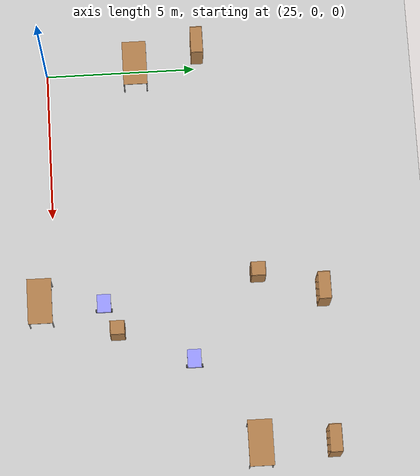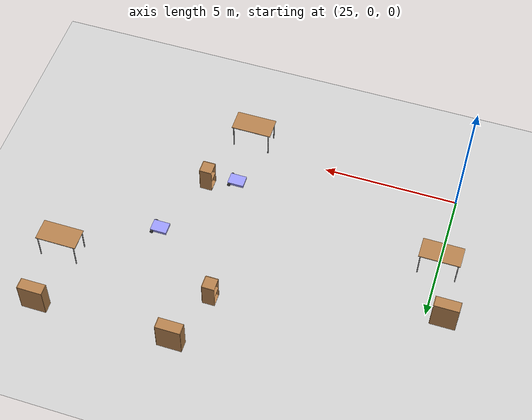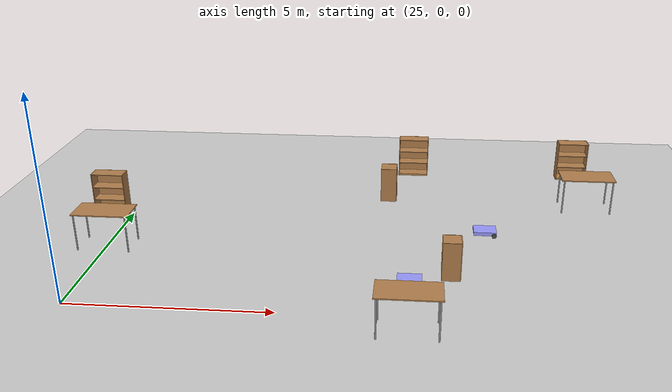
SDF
<sdf version="1.4">
 <world name="default">
  <light name="sun" type="directional">
   <pose>0 0 10 0 -0 0</pose>
   <diffuse>0.8 0.8 0.8 1</diffuse>
   <specular>0.2 0.2 0.2 1</specular>
   <attenuation>
    <range>1000</range>
    <constant>0.9</constant>
    <linear>0.01</linear>
    <quadratic>0.001</quadratic>
   </attenuation>
   <direction>0.5 0.1 -0.9</direction>
  </light>
  <model name="ground_plane">
   <static>1</static>
   <link name="link">
    <collision name="collision">
     <geometry><plane><normal>0 0 1</normal><size>100 100</size></plane></geometry>
     <surface><friction><ode><mu>100</mu><mu2>50</mu2></ode></friction></surface>
    </collision>
    <visual name="visual">
     <cast_shadows>0</cast_shadows>
     <geometry><plane><normal>0 0 1</normal><size>100 100</size></plane></geometry>
     <material>
      <script><uri>file://media/materials/scripts/gazebo.material</uri><name>Gazebo/Grey</name></script>
     </material>
    </visual>
    <velocity_decay><linear>0</linear><angular>0</angular></velocity_decay>
   </link>
  </model>
  <physics type="ode">
   <max_step_size>0.001</max_step_size>
   <real_time_factor>1</real_time_factor>
   <real_time_update_rate>1000</real_time_update_rate>
   <gravity>0 0 -9.8</gravity>
  </physics>
  <scene><ambient>0.4 0.4 0.4 1</ambient><background>0.7 0.7 0.7 1</background><shadows>1</shadows></scene>
  <model name="bookshelf">
   <static>1</static>
   <link name="link">
    <inertial><mass>1</mass></inertial>
    <collision name="back">
     <pose>0 0.005 0.6 0 -0 0</pose>
     <geometry><box><size>0.9 0.01 1.2</size></box></geometry>
    </collision>
    <visual name="visual1">
     <pose>0 0.005 0.6 0 -0 0</pose>
     <geometry><box><size>0.9 0.01 1.2</size></box></geometry>
     <material>
      <script><uri>file://media/materials/scripts/gazebo.material</uri><name>Gazebo/Wood</name></script>
     </material>
    </visual>
    <collision name="left_side">
     <pose>0.45 -0.195 0.6 0 -0 0</pose>
     <geometry><box><size>0.02 0.4 1.2</size></box></geometry>
    </collision>
    <visual name="visual2">
     <pose>0.45 -0.195 0.6 0 -0 0</pose>
     <geometry><box><size>0.02 0.4 1.2</size></box></geometry>
     <material>
      <script><uri>file://media/materials/scripts/gazebo.material</uri><name>Gazebo/Wood</name></script>
     </material>
    </visual>
    <collision name="right_side">
     <pose>-0.45 -0.195 0.6 0 -0 0</pose>
     <geometry><box><size>0.02 0.4 1.2</size></box></geometry>
    </collision>
    <visual name="visual3">
     <pose>-0.45 -0.195 0.6 0 -0 0</pose>
     <geometry><box><size>0.02 0.4 1.2</size></box></geometry>
     <material>
      <script><uri>file://media/materials/scripts/gazebo.material</uri><name>Gazebo/Wood</name></script>
     </material>
    </visual>
    <collision name="bottom">
     <pose>0 -0.195 0.03 0 -0 0</pose>
     <geometry><box><size>0.88 0.4 0.06</size></box></geometry>
    </collision>
    <visual name="visual4">
     <pose>0 -0.195 0.03 0 -0 0</pose>
     <geometry><box><size>0.88 0.4 0.06</size></box></geometry>
     <material>
      <script><uri>file://media/materials/scripts/gazebo.material</uri><name>Gazebo/Wood</name></script>
     </material>
    </visual>
    <collision name="top">
     <pose>0 -0.195 1.19 0 -0 0</pose>
     <geometry><box><size>0.88 0.4 0.02</size></box></geometry>
    </collision>
    <visual name="visual5">
     <pose>0 -0.195 1.19 0 -0 0</pose>
     <geometry><box><size>0.88 0.4 0.02</size></box></geometry>
     <material>
      <script><uri>file://media/materials/scripts/gazebo.material</uri><name>Gazebo/Wood</name></script>
     </material>
    </visual>
    <collision name="low_shelf">
     <pose>0 -0.195 0.43 0 -0 0</pose>
     <geometry><box><size>0.88 0.4 0.02</size></box></geometry>
    </collision>
    <visual name="visual6">
     <pose>0 -0.195 0.43 0 -0 0</pose>
     <geometry><box><size>0.88 0.4 0.02</size></box></geometry>
     <material>
      <script><uri>file://media/materials/scripts/gazebo.material</uri><name>Gazebo/Wood</name></script>
     </material>
    </visual>
    <collision name="high_shelf">
     <pose>0 -0.195 0.8 0 -0 0</pose>
     <geometry><box><size>0.88 0.4 0.02</size></box></geometry>
    </collision>
    <visual name="visual7">
     <pose>0 -0.195 0.8 0 -0 0</pose>
     <geometry><box><size>0.88 0.4 0.02</size></box></geometry>
     <material>
      <script><uri>file://media/materials/scripts/gazebo.material</uri><name>Gazebo/Wood</name></script>
     </material>
    </visual>
    <velocity_decay><linear>0</linear><angular>0</angular></velocity_decay>
   </link>
   <pose>33 9 0 0 -0 0</pose>
  </model>
  <model name="bookshelf_0">
   <static>1</static>
   <link name="link">
    <inertial><mass>1</mass></inertial>
    <collision name="back">
     <pose>0 0.005 0.6 0 -0 0</pose>
     <geometry><box><size>0.9 0.01 1.2</size></box></geometry>
    </collision>
    <visual name="visual1">
     <pose>0 0.005 0.6 0 -0 0</pose>
     <geometry><box><size>0.9 0.01 1.2</size></box></geometry>
     <material>
      <script><uri>file://media/materials/scripts/gazebo.material</uri><name>Gazebo/Wood</name></script>
     </material>
    </visual>
    <collision name="left_side">
     <pose>0.45 -0.195 0.6 0 -0 0</pose>
     <geometry><box><size>0.02 0.4 1.2</size></box></geometry>
    </collision>
    <visual name="visual2">
     <pose>0.45 -0.195 0.6 0 -0 0</pose>
     <geometry><box><size>0.02 0.4 1.2</size></box></geometry>
     <material>
      <script><uri>file://media/materials/scripts/gazebo.material</uri><name>Gazebo/Wood</name></script>
     </material>
    </visual>
    <collision name="right_side">
     <pose>-0.45 -0.195 0.6 0 -0 0</pose>
     <geometry><box><size>0.02 0.4 1.2</size></box></geometry>
    </collision>
    <visual name="visual3">
     <pose>-0.45 -0.195 0.6 0 -0 0</pose>
     <geometry><box><size>0.02 0.4 1.2</size></box></geometry>
     <material>
      <script><uri>file://media/materials/scripts/gazebo.material</uri><name>Gazebo/Wood</name></script>
     </material>
    </visual>
    <collision name="bottom">
     <pose>0 -0.195 0.03 0 -0 0</pose>
     <geometry><box><size>0.88 0.4 0.06</size></box></geometry>
    </collision>
    <visual name="visual4">
     <pose>0 -0.195 0.03 0 -0 0</pose>
     <geometry><box><size>0.88 0.4 0.06</size></box></geometry>
     <material>
      <script><uri>file://media/materials/scripts/gazebo.material</uri><name>Gazebo/Wood</name></script>
     </material>
    </visual>
    <collision name="top">
     <pose>0 -0.195 1.19 0 -0 0</pose>
     <geometry><box><size>0.88 0.4 0.02</size></box></geometry>
    </collision>
    <visual name="visual5">
     <pose>0 -0.195 1.19 0 -0 0</pose>
     <geometry><box><size>0.88 0.4 0.02</size></box></geometry>
     <material>
      <script><uri>file://media/materials/scripts/gazebo.material</uri><name>Gazebo/Wood</name></script>
     </material>
    </visual>
    <collision name="low_shelf">
     <pose>0 -0.195 0.43 0 -0 0</pose>
     <geometry><box><size>0.88 0.4 0.02</size></box></geometry>
    </collision>
    <visual name="visual6">
     <pose>0 -0.195 0.43 0 -0 0</pose>
     <geometry><box><size>0.88 0.4 0.02</size></box></geometry>
     <material>
      <script><uri>file://media/materials/scripts/gazebo.material</uri><name>Gazebo/Wood</name></script>
     </material>
    </visual>
    <collision name="high_shelf">
     <pose>0 -0.195 0.8 0 -0 0</pose>
     <geometry><box><size>0.88 0.4 0.02</size></box></geometry>
    </collision>
    <visual name="visual7">
     <pose>0 -0.195 0.8 0 -0 0</pose>
     <geometry><box><size>0.88 0.4 0.02</size></box></geometry>
     <material>
      <script><uri>file://media/materials/scripts/gazebo.material</uri><name>Gazebo/Wood</name></script>
     </material>
    </visual>
    <velocity_decay><linear>0</linear><angular>0</angular></velocity_decay>
   </link>
   <pose>38 9 0 0 -0 0</pose>
  </model>
  <model name="bookshelf_1">
   <static>1</static>
   <link name="link">
    <inertial><mass>1</mass></inertial>
    <collision name="back">
     <pose>0 0.005 0.6 0 -0 0</pose>
     <geometry><box><size>0.9 0.01 1.2</size></box></geometry>
    </collision>
    <visual name="visual1">
     <pose>0 0.005 0.6 0 -0 0</pose>
     <geometry><box><size>0.9 0.01 1.2</size></box></geometry>
     <material>
      <script><uri>file://media/materials/scripts/gazebo.material</uri><name>Gazebo/Wood</name></script>
     </material>
    </visual>
    <collision name="left_side">
     <pose>0.45 -0.195 0.6 0 -0 0</pose>
     <geometry><box><size>0.02 0.4 1.2</size></box></geometry>
    </collision>
    <visual name="visual2">
     <pose>0.45 -0.195 0.6 0 -0 0</pose>
     <geometry><box><size>0.02 0.4 1.2</size></box></geometry>
     <material>
      <script><uri>file://media/materials/scripts/gazebo.material</uri><name>Gazebo/Wood</name></script>
     </material>
    </visual>
    <collision name="right_side">
     <pose>-0.45 -0.195 0.6 0 -0 0</pose>
     <geometry><box><size>0.02 0.4 1.2</size></box></geometry>
    </collision>
    <visual name="visual3">
     <pose>-0.45 -0.195 0.6 0 -0 0</pose>
     <geometry><box><size>0.02 0.4 1.2</size></box></geometry>
     <material>
      <script><uri>file://media/materials/scripts/gazebo.material</uri><name>Gazebo/Wood</name></script>
     </material>
    </visual>
    <collision name="bottom">
     <pose>0 -0.195 0.03 0 -0 0</pose>
     <geometry><box><size>0.88 0.4 0.06</size></box></geometry>
    </collision>
    <visual name="visual4">
     <pose>0 -0.195 0.03 0 -0 0</pose>
     <geometry><box><size>0.88 0.4 0.06</size></box></geometry>
     <material>
      <script><uri>file://media/materials/scripts/gazebo.material</uri><name>Gazebo/Wood</name></script>
     </material>
    </visual>
    <collision name="top">
     <pose>0 -0.195 1.19 0 -0 0</pose>
     <geometry><box><size>0.88 0.4 0.02</size></box></geometry>
    </collision>
    <visual name="visual5">
     <pose>0 -0.195 1.19 0 -0 0</pose>
     <geometry><box><size>0.88 0.4 0.02</size></box></geometry>
     <material>
      <script><uri>file://media/materials/scripts/gazebo.material</uri><name>Gazebo/Wood</name></script>
     </material>
    </visual>
    <collision name="low_shelf">
     <pose>0 -0.195 0.43 0 -0 0</pose>
     <geometry><box><size>0.88 0.4 0.02</size></box></geometry>
    </collision>
    <visual name="visual6">
     <pose>0 -0.195 0.43 0 -0 0</pose>
     <geometry><box><size>0.88 0.4 0.02</size></box></geometry>
     <material>
      <script><uri>file://media/materials/scripts/gazebo.material</uri><name>Gazebo/Wood</name></script>
     </material>
    </visual>
    <collision name="high_shelf">
     <pose>0 -0.195 0.8 0 -0 0</pose>
     <geometry><box><size>0.88 0.4 0.02</size></box></geometry>
    </collision>
    <visual name="visual7">
     <pose>0 -0.195 0.8 0 -0 0</pose>
     <geometry><box><size>0.88 0.4 0.02</size></box></geometry>
     <material>
      <script><uri>file://media/materials/scripts/gazebo.material</uri><name>Gazebo/Wood</name></script>
     </material>
    </visual>
    <velocity_decay><linear>0</linear><angular>0</angular></velocity_decay>
   </link>
   <pose>24.3494 5.30723 0 0 -0 0</pose>
  </model>
  <model name="cabinet">
   <static>1</static>
   <link name="cabinet_bottom_plate">
    <inertial>
     <pose>0 0 -1 0 -0 0</pose>
     <inertia><ixx>2.05</ixx><ixy>0</ixy><ixz>0</ixz><iyy>2.05</iyy><iyz>0</iyz><izz>2.05</izz></inertia>
     <mass>25</mass>
    </inertial>
    <collision name="cabinet_bottom_plate_geom">
     <pose>0 0 0.01 0 -0 0</pose>
     <geometry><box><size>0.45 0.45 0.02</size></box></geometry>
    </collision>
    <visual name="cabinet_bottom_plate_geom_visual">
     <pose>0 0 0.01 0 -0 0</pose>
     <geometry><box><size>0.45 0.45 0.02</size></box></geometry>
     <material>
      <script><uri>file://media/materials/scripts/gazebo.material</uri><name>Gazebo/Wood</name></script>
     </material>
    </visual>
    <collision name="cabinet_bottom_plate_geom_cabinet_back_plate">
     <pose>0.235 0 0.51 0 -0 0</pose>
     <geometry><box><size>0.02 0.45 1.02</size></box></geometry>
    </collision>
    <visual name="cabinet_bottom_plate_geom_cabinet_back_plate_visual">
     <pose>0.235 0 0.51 0 -0 0</pose>
     <geometry><box><size>0.02 0.45 1.02</size></box></geometry>
     <material>
      <script><uri>file://media/materials/scripts/gazebo.material</uri><name>Gazebo/Wood</name></script>
     </material>
    </visual>
    <collision name="cabinet_bottom_plate_geom_cabinet_left_plate">
     <pose>0 0.235 0.51 0 -0 0</pose>
     <geometry><box><size>0.45 0.02 1.02</size></box></geometry>
    </collision>
    <visual name="cabinet_bottom_plate_geom_cabinet_left_plate_visual">
     <pose>0 0.235 0.51 0 -0 0</pose>
     <geometry><box><size>0.45 0.02 1.02</size></box></geometry>
     <material>
      <script><uri>file://media/materials/scripts/gazebo.material</uri><name>Gazebo/Wood</name></script>
     </material>
    </visual>
    <collision name="cabinet_bottom_plate_geom_cabinet_middle_plate">
     <pose>0 0 0.51 0 -0 0</pose>
     <geometry><box><size>0.45 0.45 0.02</size></box></geometry>
    </collision>
    <visual name="cabinet_bottom_plate_geom_cabinet_middle_plate_visual">
     <pose>0 0 0.51 0 -0 0</pose>
     <geometry><box><size>0.45 0.45 0.02</size></box></geometry>
     <material>
      <script><uri>file://media/materials/scripts/gazebo.material</uri><name>Gazebo/Wood</name></script>
     </material>
    </visual>
    <collision name="cabinet_bottom_plate_geom_cabinet_right_plate">
     <pose>0 -0.235 0.51 0 -0 0</pose>
     <geometry><box><size>0.45 0.02 1.02</size></box></geometry>
    </collision>
    <visual name="cabinet_bottom_plate_geom_cabinet_right_plate_visual">
     <pose>0 -0.235 0.51 0 -0 0</pose>
     <geometry><box><size>0.45 0.02 1.02</size></box></geometry>
     <material>
      <script><uri>file://media/materials/scripts/gazebo.material</uri><name>Gazebo/Wood</name></script>
     </material>
    </visual>
    <collision name="cabinet_bottom_plate_geom_cabinet_top_plate">
     <pose>0 0 1.01 0 -0 0</pose>
     <geometry><box><size>0.45 0.45 0.02</size></box></geometry>
    </collision>
    <visual name="cabinet_bottom_plate_geom_cabinet_top_plate_visual">
     <pose>0 0 1.01 0 -0 0</pose>
     <geometry><box><size>0.45 0.45 0.02</size></box></geometry>
     <material>
      <script><uri>file://media/materials/scripts/gazebo.material</uri><name>Gazebo/Wood</name></script>
     </material>
    </visual>
    <velocity_decay><linear>0</linear><angular>0</angular></velocity_decay>
   </link>
   <pose>32.2882 6.69817 0 0 -0 0</pose>
  </model>
  <model name="cabinet_0">
   <static>1</static>
   <link name="cabinet_bottom_plate">
    <inertial>
     <pose>0 0 -1 0 -0 0</pose>
     <inertia><ixx>2.05</ixx><ixy>0</ixy><ixz>0</ixz><iyy>2.05</iyy><iyz>0</iyz><izz>2.05</izz></inertia>
     <mass>25</mass>
    </inertial>
    <collision name="cabinet_bottom_plate_geom">
     <pose>0 0 0.01 0 -0 0</pose>
     <geometry><box><size>0.45 0.45 0.02</size></box></geometry>
    </collision>
    <visual name="cabinet_bottom_plate_geom_visual">
     <pose>0 0 0.01 0 -0 0</pose>
     <geometry><box><size>0.45 0.45 0.02</size></box></geometry>
     <material>
      <script><uri>file://media/materials/scripts/gazebo.material</uri><name>Gazebo/Wood</name></script>
     </material>
    </visual>
    <collision name="cabinet_bottom_plate_geom_cabinet_back_plate">
     <pose>0.235 0 0.51 0 -0 0</pose>
     <geometry><box><size>0.02 0.45 1.02</size></box></geometry>
    </collision>
    <visual name="cabinet_bottom_plate_geom_cabinet_back_plate_visual">
     <pose>0.235 0 0.51 0 -0 0</pose>
     <geometry><box><size>0.02 0.45 1.02</size></box></geometry>
     <material>
      <script><uri>file://media/materials/scripts/gazebo.material</uri><name>Gazebo/Wood</name></script>
     </material>
    </visual>
    <collision name="cabinet_bottom_plate_geom_cabinet_left_plate">
     <pose>0 0.235 0.51 0 -0 0</pose>
     <geometry><box><size>0.45 0.02 1.02</size></box></geometry>
    </collision>
    <visual name="cabinet_bottom_plate_geom_cabinet_left_plate_visual">
     <pose>0 0.235 0.51 0 -0 0</pose>
     <geometry><box><size>0.45 0.02 1.02</size></box></geometry>
     <material>
      <script><uri>file://media/materials/scripts/gazebo.material</uri><name>Gazebo/Wood</name></script>
     </material>
    </visual>
    <collision name="cabinet_bottom_plate_geom_cabinet_middle_plate">
     <pose>0 0 0.51 0 -0 0</pose>
     <geometry><box><size>0.45 0.45 0.02</size></box></geometry>
    </collision>
    <visual name="cabinet_bottom_plate_geom_cabinet_middle_plate_visual">
     <pose>0 0 0.51 0 -0 0</pose>
     <geometry><box><size>0.45 0.45 0.02</size></box></geometry>
     <material>
      <script><uri>file://media/materials/scripts/gazebo.material</uri><name>Gazebo/Wood</name></script>
     </material>
    </visual>
    <collision name="cabinet_bottom_plate_geom_cabinet_right_plate">
     <pose>0 -0.235 0.51 0 -0 0</pose>
     <geometry><box><size>0.45 0.02 1.02</size></box></geometry>
    </collision>
    <visual name="cabinet_bottom_plate_geom_cabinet_right_plate_visual">
     <pose>0 -0.235 0.51 0 -0 0</pose>
     <geometry><box><size>0.45 0.02 1.02</size></box></geometry>
     <material>
      <script><uri>file://media/materials/scripts/gazebo.material</uri><name>Gazebo/Wood</name></script>
     </material>
    </visual>
    <collision name="cabinet_bottom_plate_geom_cabinet_top_plate">
     <pose>0 0 1.01 0 -0 0</pose>
     <geometry><box><size>0.45 0.45 0.02</size></box></geometry>
    </collision>
    <visual name="cabinet_bottom_plate_geom_cabinet_top_plate_visual">
     <pose>0 0 1.01 0 -0 0</pose>
     <geometry><box><size>0.45 0.45 0.02</size></box></geometry>
     <material>
      <script><uri>file://media/materials/scripts/gazebo.material</uri><name>Gazebo/Wood</name></script>
     </material>
    </visual>
    <velocity_decay><linear>0</linear><angular>0</angular></velocity_decay>
   </link>
   <pose>34 2 0 0 -0 0</pose>
  </model>
  <model name="table">
   <static>1</static>
   <link name="link">
    <collision name="surface">
     <pose>0 0 1 0 -0 0</pose>
     <geometry><box><size>1.5 0.8 0.03</size></box></geometry>
    </collision>
    <visual name="visual1">
     <pose>0 0 1 0 -0 0</pose>
     <geometry><box><size>1.5 0.8 0.03</size></box></geometry>
     <material>
      <script><uri>file://media/materials/scripts/gazebo.material</uri><name>Gazebo/Wood</name></script>
     </material>
    </visual>
    <collision name="front_left_leg">
     <pose>0.68 0.38 0.5 0 -0 0</pose>
     <geometry><cylinder><radius>0.02</radius><length>1</length></cylinder></geometry>
    </collision>
    <visual name="front_left_leg">
     <pose>0.68 0.38 0.5 0 -0 0</pose>
     <geometry><cylinder><radius>0.02</radius><length>1</length></cylinder></geometry>
     <material>
      <script><uri>file://media/materials/scripts/gazebo.material</uri><name>Gazebo/Grey</name></script>
     </material>
    </visual>
    <collision name="front_right_leg">
     <pose>0.68 -0.38 0.5 0 -0 0</pose>
     <geometry><cylinder><radius>0.02</radius><length>1</length></cylinder></geometry>
    </collision>
    <visual name="front_right_leg">
     <pose>0.68 -0.38 0.5 0 -0 0</pose>
     <geometry><cylinder><radius>0.02</radius><length>1</length></cylinder></geometry>
     <material>
      <script><uri>file://media/materials/scripts/gazebo.material</uri><name>Gazebo/Grey</name></script>
     </material>
    </visual>
    <collision name="back_right_leg">
     <pose>-0.68 -0.38 0.5 0 -0 0</pose>
     <geometry><cylinder><radius>0.02</radius><length>1</length></cylinder></geometry>
    </collision>
    <visual name="back_right_leg">
     <pose>-0.68 -0.38 0.5 0 -0 0</pose>
     <geometry><cylinder><radius>0.02</radius><length>1</length></cylinder></geometry>
     <material>
      <script><uri>file://media/materials/scripts/gazebo.material</uri><name>Gazebo/Grey</name></script>
     </material>
    </visual>
    <collision name="back_left_leg">
     <pose>-0.68 0.38 0.5 0 -0 0</pose>
     <geometry><cylinder><radius>0.02</radius><length>1</length></cylinder></geometry>
    </collision>
    <visual name="back_left_leg">
     <pose>-0.68 0.38 0.5 0 -0 0</pose>
     <geometry><cylinder><radius>0.02</radius><length>1</length></cylinder></geometry>
     <material>
      <script><uri>file://media/materials/scripts/gazebo.material</uri><name>Gazebo/Grey</name></script>
     </material>
    </visual>
    <velocity_decay><linear>0</linear><angular>0</angular></velocity_decay>
   </link>
   <pose>33 -0.483981 0 0 -0 0</pose>
  </model>
  <model name="table_0">
   <static>1</static>
   <link name="link">
    <collision name="surface">
     <pose>0 0 1 0 -0 0</pose>
     <geometry><box><size>1.5 0.8 0.03</size></box></geometry>
    </collision>
    <visual name="visual1">
     <pose>0 0 1 0 -0 0</pose>
     <geometry><box><size>1.5 0.8 0.03</size></box></geometry>
     <material>
      <script><uri>file://media/materials/scripts/gazebo.material</uri><name>Gazebo/Wood</name></script>
     </material>
    </visual>
    <collision name="front_left_leg">
     <pose>0.68 0.38 0.5 0 -0 0</pose>
     <geometry><cylinder><radius>0.02</radius><length>1</length></cylinder></geometry>
    </collision>
    <visual name="front_left_leg">
     <pose>0.68 0.38 0.5 0 -0 0</pose>
     <geometry><cylinder><radius>0.02</radius><length>1</length></cylinder></geometry>
     <material>
      <script><uri>file://media/materials/scripts/gazebo.material</uri><name>Gazebo/Grey</name></script>
     </material>
    </visual>
    <collision name="front_right_leg">
     <pose>0.68 -0.38 0.5 0 -0 0</pose>
     <geometry><cylinder><radius>0.02</radius><length>1</length></cylinder></geometry>
    </collision>
    <visual name="front_right_leg">
     <pose>0.68 -0.38 0.5 0 -0 0</pose>
     <geometry><cylinder><radius>0.02</radius><length>1</length></cylinder></geometry>
     <material>
      <script><uri>file://media/materials/scripts/gazebo.material</uri><name>Gazebo/Grey</name></script>
     </material>
    </visual>
    <collision name="back_right_leg">
     <pose>-0.68 -0.38 0.5 0 -0 0</pose>
     <geometry><cylinder><radius>0.02</radius><length>1</length></cylinder></geometry>
    </collision>
    <visual name="back_right_leg">
     <pose>-0.68 -0.38 0.5 0 -0 0</pose>
     <geometry><cylinder><radius>0.02</radius><length>1</length></cylinder></geometry>
     <material>
      <script><uri>file://media/materials/scripts/gazebo.material</uri><name>Gazebo/Grey</name></script>
     </material>
    </visual>
    <collision name="back_left_leg">
     <pose>-0.68 0.38 0.5 0 -0 0</pose>
     <geometry><cylinder><radius>0.02</radius><length>1</length></cylinder></geometry>
    </collision>
    <visual name="back_left_leg">
     <pose>-0.68 0.38 0.5 0 -0 0</pose>
     <geometry><cylinder><radius>0.02</radius><length>1</length></cylinder></geometry>
     <material>
      <script><uri>file://media/materials/scripts/gazebo.material</uri><name>Gazebo/Grey</name></script>
     </material>
    </visual>
    <velocity_decay><linear>0</linear><angular>0</angular></velocity_decay>
   </link>
   <pose>38 6.41496 0 0 -0 0</pose>
  </model>
  <model name="table_1">
   <static>1</static>
   <link name="link">
    <collision name="surface">
     <pose>0 0 1 0 -0 0</pose>
     <geometry><box><size>1.5 0.8 0.03</size></box></geometry>
    </collision>
    <visual name="visual1">
     <pose>0 0 1 0 -0 0</pose>
     <geometry><box><size>1.5 0.8 0.03</size></box></geometry>
     <material>
      <script><uri>file://media/materials/scripts/gazebo.material</uri><name>Gazebo/Wood</name></script>
     </material>
    </visual>
    <collision name="front_left_leg">
     <pose>0.68 0.38 0.5 0 -0 0</pose>
     <geometry><cylinder><radius>0.02</radius><length>1</length></cylinder></geometry>
    </collision>
    <visual name="front_left_leg">
     <pose>0.68 0.38 0.5 0 -0 0</pose>
     <geometry><cylinder><radius>0.02</radius><length>1</length></cylinder></geometry>
     <material>
      <script><uri>file://media/materials/scripts/gazebo.material</uri><name>Gazebo/Grey</name></script>
     </material>
    </visual>
    <collision name="front_right_leg">
     <pose>0.68 -0.38 0.5 0 -0 0</pose>
     <geometry><cylinder><radius>0.02</radius><length>1</length></cylinder></geometry>
    </collision>
    <visual name="front_right_leg">
     <pose>0.68 -0.38 0.5 0 -0 0</pose>
     <geometry><cylinder><radius>0.02</radius><length>1</length></cylinder></geometry>
     <material>
      <script><uri>file://media/materials/scripts/gazebo.material</uri><name>Gazebo/Grey</name></script>
     </material>
    </visual>
    <collision name="back_right_leg">
     <pose>-0.68 -0.38 0.5 0 -0 0</pose>
     <geometry><cylinder><radius>0.02</radius><length>1</length></cylinder></geometry>
    </collision>
    <visual name="back_right_leg">
     <pose>-0.68 -0.38 0.5 0 -0 0</pose>
     <geometry><cylinder><radius>0.02</radius><length>1</length></cylinder></geometry>
     <material>
      <script><uri>file://media/materials/scripts/gazebo.material</uri><name>Gazebo/Grey</name></script>
     </material>
    </visual>
    <collision name="back_left_leg">
     <pose>-0.68 0.38 0.5 0 -0 0</pose>
     <geometry><cylinder><radius>0.02</radius><length>1</length></cylinder></geometry>
    </collision>
    <visual name="back_left_leg">
     <pose>-0.68 0.38 0.5 0 -0 0</pose>
     <geometry><cylinder><radius>0.02</radius><length>1</length></cylinder></geometry>
     <material>
      <script><uri>file://media/materials/scripts/gazebo.material</uri><name>Gazebo/Grey</name></script>
     </material>
    </visual>
    <velocity_decay><linear>0</linear><angular>0</angular></velocity_decay>
   </link>
   <pose>25 3 0 0 -0 0</pose>
  </model>
  <model name="Collection_bot_5">
   <static>0</static>
   <link name="base_link">
    <pose>0 0 0.1 0 -0 0</pose>
    <collision name="collision"><geometry><box><size>0.6096 0.4572 0.1</size></box></geometry></collision>
    <visual name="visual">
     <geometry><box><size>0.6096 0.4572 0.1</size></box></geometry>
     <material>
      <ambient>0.6 0.6 1 1</ambient>
      <diffuse>0.6 0.6 1 1</diffuse>
      <specular>0.1 0.1 0.1 1</specular>
      <emissive>0 0 0 0</emissive>
     </material>
    </visual>
    <collision name="caster_collision">
     <pose>-0.254 0 -0.06905 0 -0 0</pose>
     <geometry><sphere><radius>0.03175</radius></sphere></geometry>
     <surface><friction><ode><mu>0</mu><mu2>0</mu2><slip1>1</slip1><slip2>1</slip2></ode></friction></surface>
    </collision>
    <visual name="caster_visual">
     <pose>-0.254 0 -0.06905 0 -0 0</pose>
     <geometry><sphere><radius>0.03175</radius></sphere></geometry>
     <material>
      <ambient>0.3 0.3 0.3 1</ambient>
      <diffuse>0.3 0.3 0.3 1</diffuse>
      <specular>0.1 0.1 0.1 1</specular>
      <emissive>0 0 0 0</emissive>
     </material>
    </visual>
    <velocity_decay><linear>0</linear><angular>0</angular></velocity_decay>
    <inertial>
     <inertia><ixx>1</ixx><ixy>0</ixy><ixz>0</ixz><iyy>1</iyy><iyz>0</iyz><izz>1</izz></inertia>
     <mass>1</mass>
    </inertial>
   </link>
   <link name="left_wheel_link">
    <pose>0.2413 -0.2536 0.0619125 1.5708 -0 0</pose>
    <collision name="collision">
     <geometry><cylinder><length>0.05</length><radius>0.0619125</radius></cylinder></geometry>
    </collision>
    <visual name="visual">
     <geometry><cylinder><length>0.05</length><radius>0.0619125</radius></cylinder></geometry>
     <material>
      <ambient>0.3 0.3 0.3 1</ambient>
      <diffuse>0.3 0.3 0.3 1</diffuse>
      <specular>0.1 0.1 0.1 1</specular>
      <emissive>0 0 0 0</emissive>
     </material>
    </visual>
    <velocity_decay><linear>0</linear><angular>0</angular></velocity_decay>
    <inertial>
     <inertia><ixx>1</ixx><ixy>0</ixy><ixz>0</ixz><iyy>1</iyy><iyz>0</iyz><izz>1</izz></inertia>
     <mass>1</mass>
    </inertial>
   </link>
   <link name="right_wheel_link">
    <pose>0.2413 0.2536 0.0619125 1.5708 -0 0</pose>
    <collision name="collision">
     <geometry><cylinder><length>0.05</length><radius>0.0619125</radius></cylinder></geometry>
    </collision>
    <visual name="visual">
     <geometry><cylinder><length>0.05</length><radius>0.0619125</radius></cylinder></geometry>
     <material>
      <ambient>0.3 0.3 0.3 1</ambient>
      <diffuse>0.3 0.3 0.3 1</diffuse>
      <specular>0.1 0.1 0.1 1</specular>
      <emissive>0 0 0 0</emissive>
     </material>
    </visual>
    <velocity_decay><linear>0</linear><angular>0</angular></velocity_decay>
    <inertial>
     <inertia><ixx>1</ixx><ixy>0</ixy><ixz>0</ixz><iyy>1</iyy><iyz>0</iyz><izz>1</izz></inertia>
     <mass>1</mass>
    </inertial>
   </link>
   <joint name="base_left_wheel" type="revolute">
    <parent>base_link</parent>
    <child>left_wheel_link</child>
    <axis><xyz>0 1 0</xyz><limit><lower>-1e+16</lower><upper>1e+16</upper></limit></axis>
   </joint>
   <joint name="base_right_wheel" type="revolute">
    <parent>base_link</parent>
    <child>right_wheel_link</child>
    <axis><xyz>0 1 0</xyz><limit><lower>-1e+16</lower><upper>1e+16</upper></limit></axis>
   </joint>
   <pose>35 4.45604 0 0 -0 0</pose>
  </model>
  <model name="Collection_bot_6">
   <static>0</static>
   <link name="base_link">
    <pose>0 0 0.1 0 -0 0</pose>
    <collision name="collision"><geometry><box><size>0.6096 0.4572 0.1</size></box></geometry></collision>
    <visual name="visual">
     <geometry><box><size>0.6096 0.4572 0.1</size></box></geometry>
     <material>
      <ambient>0.6 0.6 1 1</ambient>
      <diffuse>0.6 0.6 1 1</diffuse>
      <specular>0.1 0.1 0.1 1</specular>
      <emissive>0 0 0 0</emissive>
     </material>
    </visual>
    <collision name="caster_collision">
     <pose>-0.254 0 -0.06905 0 -0 0</pose>
     <geometry><sphere><radius>0.03175</radius></sphere></geometry>
     <surface><friction><ode><mu>0</mu><mu2>0</mu2><slip1>1</slip1><slip2>1</slip2></ode></friction></surface>
    </collision>
    <visual name="caster_visual">
     <pose>-0.254 0 -0.06905 0 -0 0</pose>
     <geometry><sphere><radius>0.03175</radius></sphere></geometry>
     <material>
      <ambient>0.3 0.3 0.3 1</ambient>
      <diffuse>0.3 0.3 0.3 1</diffuse>
      <specular>0.1 0.1 0.1 1</specular>
      <emissive>0 0 0 0</emissive>
     </material>
    </visual>
    <velocity_decay><linear>0</linear><angular>0</angular></velocity_decay>
    <inertial>
     <inertia><ixx>1</ixx><ixy>0</ixy><ixz>0</ixz><iyy>1</iyy><iyz>0</iyz><izz>1</izz></inertia>
     <mass>1</mass>
    </inertial>
   </link>
   <link name="left_wheel_link">
    <pose>0.2413 -0.2536 0.0619125 1.5708 -0 0</pose>
    <collision name="collision">
     <geometry><cylinder><length>0.05</length><radius>0.0619125</radius></cylinder></geometry>
    </collision>
    <visual name="visual">
     <geometry><cylinder><length>0.05</length><radius>0.0619125</radius></cylinder></geometry>
     <material>
      <ambient>0.3 0.3 0.3 1</ambient>
      <diffuse>0.3 0.3 0.3 1</diffuse>
      <specular>0.1 0.1 0.1 1</specular>
      <emissive>0 0 0 0</emissive>
     </material>
    </visual>
    <velocity_decay><linear>0</linear><angular>0</angular></velocity_decay>
    <inertial>
     <inertia><ixx>1</ixx><ixy>0</ixy><ixz>0</ixz><iyy>1</iyy><iyz>0</iyz><izz>1</izz></inertia>
     <mass>1</mass>
    </inertial>
   </link>
   <link name="right_wheel_link">
    <pose>0.2413 0.2536 0.0619125 1.5708 -0 0</pose>
    <collision name="collision">
     <geometry><cylinder><length>0.05</length><radius>0.0619125</radius></cylinder></geometry>
    </collision>
    <visual name="visual">
     <geometry><cylinder><length>0.05</length><radius>0.0619125</radius></cylinder></geometry>
     <material>
      <ambient>0.3 0.3 0.3 1</ambient>
      <diffuse>0.3 0.3 0.3 1</diffuse>
      <specular>0.1 0.1 0.1 1</specular>
      <emissive>0 0 0 0</emissive>
     </material>
    </visual>
    <velocity_decay><linear>0</linear><angular>0</angular></velocity_decay>
    <inertial>
     <inertia><ixx>1</ixx><ixy>0</ixy><ixz>0</ixz><iyy>1</iyy><iyz>0</iyz><izz>1</izz></inertia>
     <mass>1</mass>
    </inertial>
   </link>
   <joint name="base_left_wheel" type="revolute">
    <parent>base_link</parent>
    <child>left_wheel_link</child>
    <axis><xyz>0 1 0</xyz><limit><lower>-1e+16</lower><upper>1e+16</upper></limit></axis>
   </joint>
   <joint name="base_right_wheel" type="revolute">
    <parent>base_link</parent>
    <child>right_wheel_link</child>
    <axis><xyz>0 1 0</xyz><limit><lower>-1e+16</lower><upper>1e+16</upper></limit></axis>
   </joint>
   <pose>33 1.57814 0 0 -0 0</pose>
  </model>
 </world>
</sdf>
